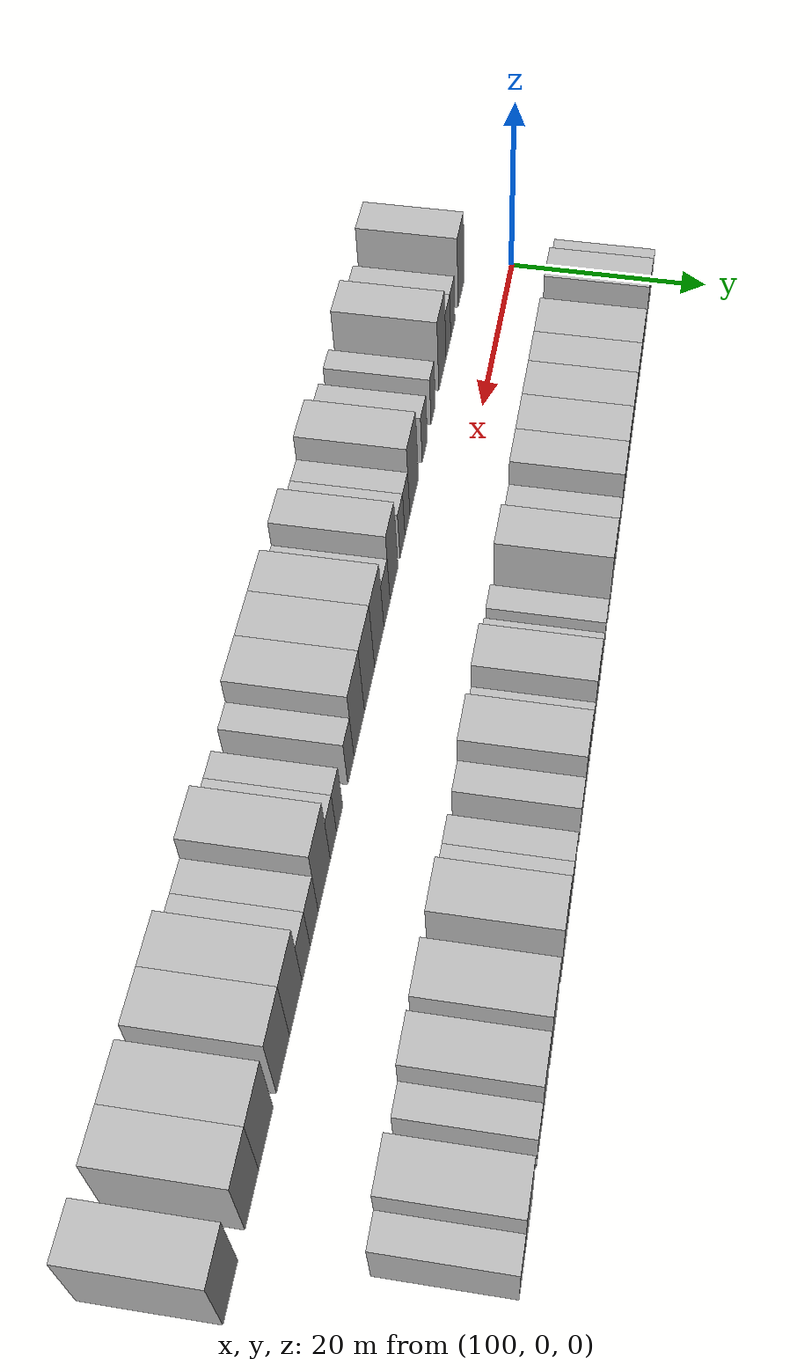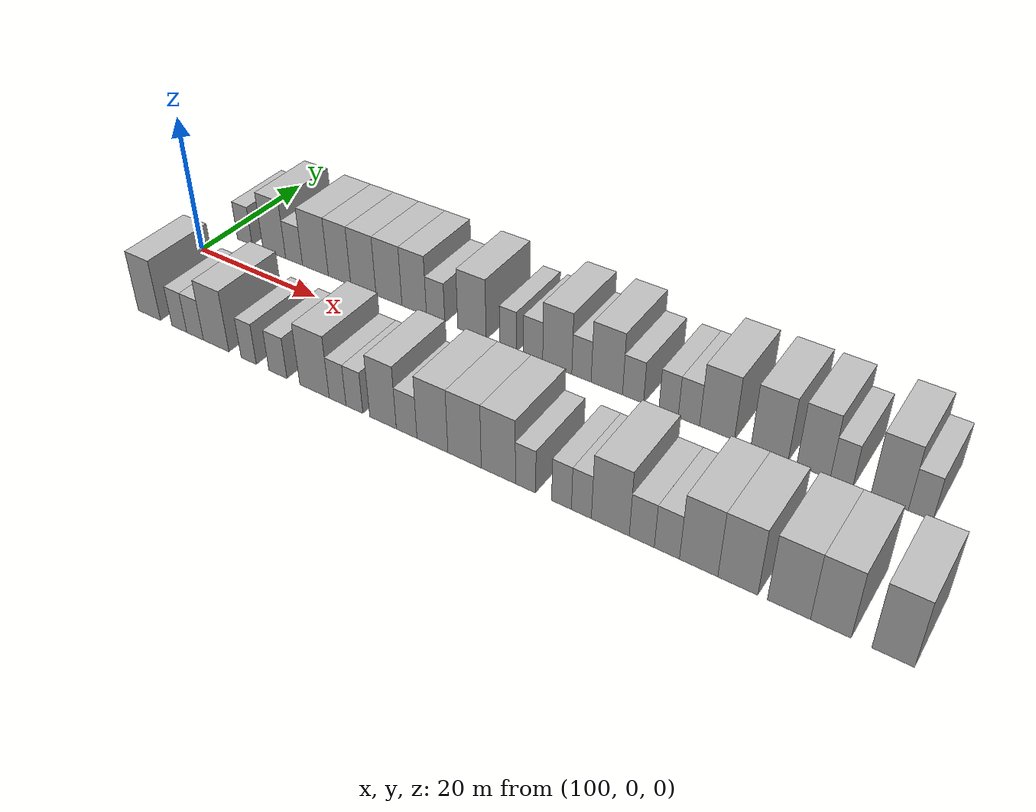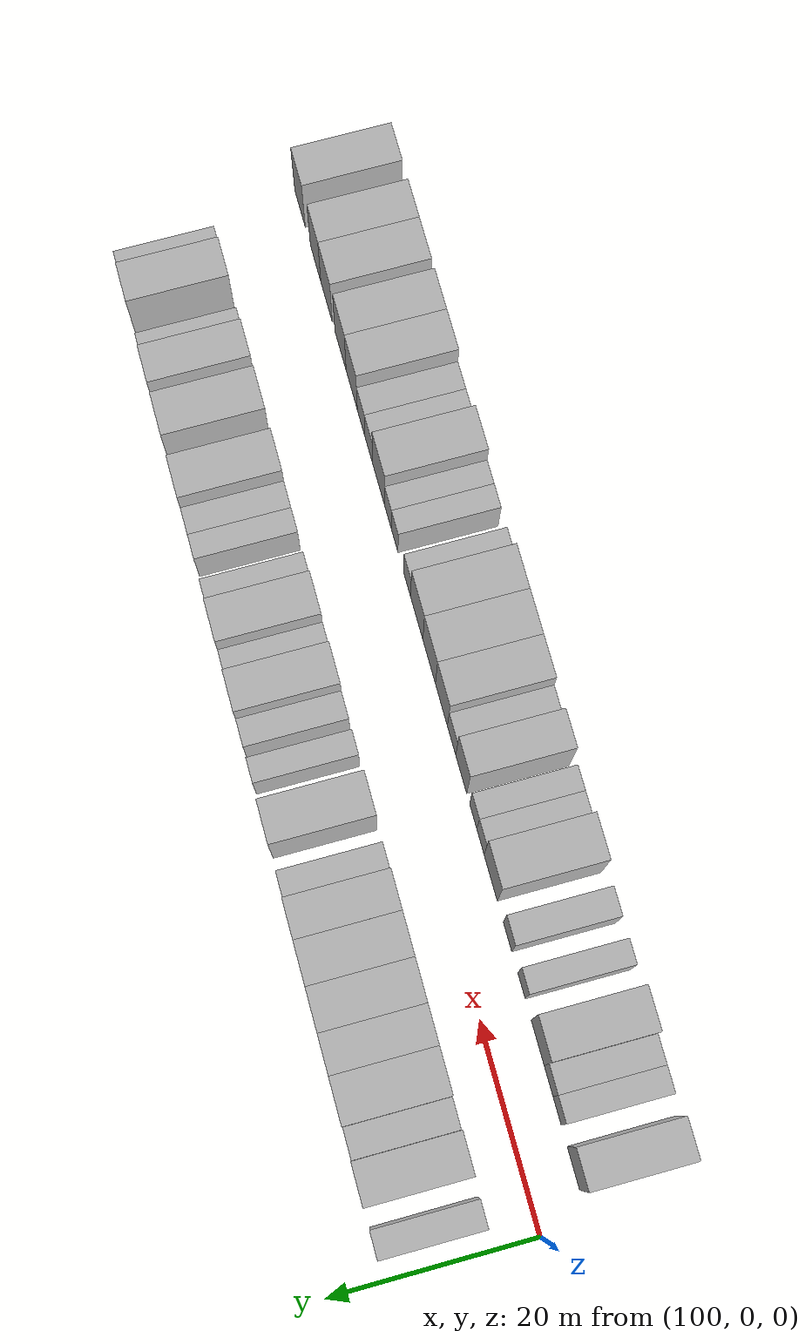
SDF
<sdf version="1.6">
 <world name="default">
  <model name="building_25">
   <static>1</static>
   <pose>103.5814 9.5000 0 0.000000 0.000000 1.570796</pose>
   <link name="link">
    <pose>0 0 3.00 0 0 0</pose>
    <collision name="collision"><geometry><box><size>10.0000 2.6917 6.0000</size></box></geometry></collision>
    <visual name="visual">
     <cast_shadows>0</cast_shadows>
     <geometry><box><size>10.0000 2.6917 6.0000</size></box></geometry>
     <material>
      <script>
       <uri>model://HANNAS_wall/materials/scripts</uri>
       <uri>model://HANNAS_wall/materials/textures</uri>
       <name>vrc/HANNAS_wall</name>
      </script>
     </material>
    </visual>
   </link>
  </model>
  <model name="building_26">
   <static>1</static>
   <pose>108.9583 9.5000 0 0.000000 0.000000 1.570796</pose>
   <link name="link">
    <pose>0 0 4.50 0 0 0</pose>
    <collision name="collision"><geometry><box><size>10.0000 4.0622 9.0000</size></box></geometry></collision>
    <visual name="visual">
     <cast_shadows>0</cast_shadows>
     <geometry><box><size>10.0000 4.0622 9.0000</size></box></geometry>
     <material>
      <script>
       <uri>model://HANNAS_wall/materials/scripts</uri>
       <uri>model://HANNAS_wall/materials/textures</uri>
       <name>vrc/HANNAS_wall</name>
      </script>
     </material>
    </visual>
   </link>
  </model>
  <model name="building_27">
   <static>1</static>
   <pose>112.4739 9.5000 0 0.000000 0.000000 1.570796</pose>
   <link name="link">
    <pose>0 0 3.00 0 0 0</pose>
    <collision name="collision"><geometry><box><size>10.0000 2.9690 6.0000</size></box></geometry></collision>
    <visual name="visual">
     <cast_shadows>0</cast_shadows>
     <geometry><box><size>10.0000 2.9690 6.0000</size></box></geometry>
     <material>
      <script>
       <uri>model://HANNAS_wall/materials/scripts</uri>
       <uri>model://HANNAS_wall/materials/textures</uri>
       <name>vrc/HANNAS_wall</name>
      </script>
     </material>
    </visual>
   </link>
  </model>
  <model name="building_28">
   <static>1</static>
   <pose>116.1923 9.5000 0 0.000000 0.000000 1.570796</pose>
   <link name="link">
    <pose>0 0 4.50 0 0 0</pose>
    <collision name="collision"><geometry><box><size>10.0000 4.4678 9.0000</size></box></geometry></collision>
    <visual name="visual">
     <cast_shadows>0</cast_shadows>
     <geometry><box><size>10.0000 4.4678 9.0000</size></box></geometry>
     <material>
      <script>
       <uri>model://HANNAS_wall/materials/scripts</uri>
       <uri>model://HANNAS_wall/materials/textures</uri>
       <name>vrc/HANNAS_wall</name>
      </script>
     </material>
    </visual>
   </link>
  </model>
  <model name="building_29">
   <static>1</static>
   <pose>120.3228 9.5000 0 0.000000 0.000000 1.570796</pose>
   <link name="link">
    <pose>0 0 4.50 0 0 0</pose>
    <collision name="collision"><geometry><box><size>10.0000 3.7932 9.0000</size></box></geometry></collision>
    <visual name="visual">
     <cast_shadows>0</cast_shadows>
     <geometry><box><size>10.0000 3.7932 9.0000</size></box></geometry>
     <material>
      <script>
       <uri>model://HANNAS_wall/materials/scripts</uri>
       <uri>model://HANNAS_wall/materials/textures</uri>
       <name>vrc/HANNAS_wall</name>
      </script>
     </material>
    </visual>
   </link>
  </model>
  <model name="building_30">
   <static>1</static>
   <pose>124.3046 9.5000 0 0.000000 0.000000 1.570796</pose>
   <link name="link">
    <pose>0 0 4.50 0 0 0</pose>
    <collision name="collision"><geometry><box><size>10.0000 4.1702 9.0000</size></box></geometry></collision>
    <visual name="visual">
     <cast_shadows>0</cast_shadows>
     <geometry><box><size>10.0000 4.1702 9.0000</size></box></geometry>
     <material>
      <script>
       <uri>model://HANNAS_wall/materials/scripts</uri>
       <uri>model://HANNAS_wall/materials/textures</uri>
       <name>vrc/HANNAS_wall</name>
      </script>
     </material>
    </visual>
   </link>
  </model>
  <model name="building_31">
   <static>1</static>
   <pose>128.4947 9.5000 0 0.000000 0.000000 1.570796</pose>
   <link name="link">
    <pose>0 0 4.50 0 0 0</pose>
    <collision name="collision"><geometry><box><size>10.0000 4.2100 9.0000</size></box></geometry></collision>
    <visual name="visual">
     <cast_shadows>0</cast_shadows>
     <geometry><box><size>10.0000 4.2100 9.0000</size></box></geometry>
     <material>
      <script>
       <uri>model://HANNAS_wall/materials/scripts</uri>
       <uri>model://HANNAS_wall/materials/textures</uri>
       <name>vrc/HANNAS_wall</name>
      </script>
     </material>
    </visual>
   </link>
  </model>
  <model name="building_32">
   <static>1</static>
   <pose>132.5430 9.5000 0 0.000000 0.000000 1.570796</pose>
   <link name="link">
    <pose>0 0 4.50 0 0 0</pose>
    <collision name="collision"><geometry><box><size>10.0000 3.8865 9.0000</size></box></geometry></collision>
    <visual name="visual">
     <cast_shadows>0</cast_shadows>
     <geometry><box><size>10.0000 3.8865 9.0000</size></box></geometry>
     <material>
      <script>
       <uri>model://HANNAS_wall/materials/scripts</uri>
       <uri>model://HANNAS_wall/materials/textures</uri>
       <name>vrc/HANNAS_wall</name>
      </script>
     </material>
    </visual>
   </link>
  </model>
  <model name="building_33">
   <static>1</static>
   <pose>135.9067 9.5000 0 0.000000 0.000000 1.570796</pose>
   <link name="link">
    <pose>0 0 3.00 0 0 0</pose>
    <collision name="collision"><geometry><box><size>10.0000 2.8411 6.0000</size></box></geometry></collision>
    <visual name="visual">
     <cast_shadows>0</cast_shadows>
     <geometry><box><size>10.0000 2.8411 6.0000</size></box></geometry>
     <material>
      <script>
       <uri>model://HANNAS_wall/materials/scripts</uri>
       <uri>model://HANNAS_wall/materials/textures</uri>
       <name>vrc/HANNAS_wall</name>
      </script>
     </material>
    </visual>
   </link>
  </model>
  <model name="building_34">
   <static>1</static>
   <pose>141.4555 9.5000 0 0.000000 0.000000 1.570796</pose>
   <link name="link">
    <pose>0 0 4.50 0 0 0</pose>
    <collision name="collision"><geometry><box><size>10.0000 4.2565 9.0000</size></box></geometry></collision>
    <visual name="visual">
     <cast_shadows>0</cast_shadows>
     <geometry><box><size>10.0000 4.2565 9.0000</size></box></geometry>
     <material>
      <script>
       <uri>model://HANNAS_wall/materials/scripts</uri>
       <uri>model://HANNAS_wall/materials/textures</uri>
       <name>vrc/HANNAS_wall</name>
      </script>
     </material>
    </visual>
   </link>
  </model>
  <model name="building_35">
   <static>1</static>
   <pose>146.8189 9.5000 0 0.000000 0.000000 1.570796</pose>
   <link name="link">
    <pose>0 0 3.00 0 0 0</pose>
    <collision name="collision"><geometry><box><size>10.0000 2.4702 6.0000</size></box></geometry></collision>
    <visual name="visual">
     <cast_shadows>0</cast_shadows>
     <geometry><box><size>10.0000 2.4702 6.0000</size></box></geometry>
     <material>
      <script>
       <uri>model://HANNAS_wall/materials/scripts</uri>
       <uri>model://HANNAS_wall/materials/textures</uri>
       <name>vrc/HANNAS_wall</name>
      </script>
     </material>
    </visual>
   </link>
  </model>
  <model name="building_36">
   <static>1</static>
   <pose>150.4202 9.5000 0 0.000000 0.000000 1.570796</pose>
   <link name="link">
    <pose>0 0 3.00 0 0 0</pose>
    <collision name="collision"><geometry><box><size>10.0000 2.7325 6.0000</size></box></geometry></collision>
    <visual name="visual">
     <cast_shadows>0</cast_shadows>
     <geometry><box><size>10.0000 2.7325 6.0000</size></box></geometry>
     <material>
      <script>
       <uri>model://HANNAS_wall/materials/scripts</uri>
       <uri>model://HANNAS_wall/materials/textures</uri>
       <name>vrc/HANNAS_wall</name>
      </script>
     </material>
    </visual>
   </link>
  </model>
  <model name="building_37">
   <static>1</static>
   <pose>153.8271 9.5000 0 0.000000 0.000000 1.570796</pose>
   <link name="link">
    <pose>0 0 4.50 0 0 0</pose>
    <collision name="collision"><geometry><box><size>10.0000 4.0813 9.0000</size></box></geometry></collision>
    <visual name="visual">
     <cast_shadows>0</cast_shadows>
     <geometry><box><size>10.0000 4.0813 9.0000</size></box></geometry>
     <material>
      <script>
       <uri>model://HANNAS_wall/materials/scripts</uri>
       <uri>model://HANNAS_wall/materials/textures</uri>
       <name>vrc/HANNAS_wall</name>
      </script>
     </material>
    </visual>
   </link>
  </model>
  <model name="building_38">
   <static>1</static>
   <pose>157.1939 9.5000 0 0.000000 0.000000 1.570796</pose>
   <link name="link">
    <pose>0 0 3.00 0 0 0</pose>
    <collision name="collision"><geometry><box><size>10.0000 2.6525 6.0000</size></box></geometry></collision>
    <visual name="visual">
     <cast_shadows>0</cast_shadows>
     <geometry><box><size>10.0000 2.6525 6.0000</size></box></geometry>
     <material>
      <script>
       <uri>model://HANNAS_wall/materials/scripts</uri>
       <uri>model://HANNAS_wall/materials/textures</uri>
       <name>vrc/HANNAS_wall</name>
      </script>
     </material>
    </visual>
   </link>
  </model>
  <model name="building_39">
   <static>1</static>
   <pose>160.6369 9.5000 0 0.000000 0.000000 1.570796</pose>
   <link name="link">
    <pose>0 0 4.50 0 0 0</pose>
    <collision name="collision"><geometry><box><size>10.0000 4.2335 9.0000</size></box></geometry></collision>
    <visual name="visual">
     <cast_shadows>0</cast_shadows>
     <geometry><box><size>10.0000 4.2335 9.0000</size></box></geometry>
     <material>
      <script>
       <uri>model://HANNAS_wall/materials/scripts</uri>
       <uri>model://HANNAS_wall/materials/textures</uri>
       <name>vrc/HANNAS_wall</name>
      </script>
     </material>
    </visual>
   </link>
  </model>
  <model name="building_40">
   <static>1</static>
   <pose>164.1347 9.5000 0 0.000000 0.000000 1.570796</pose>
   <link name="link">
    <pose>0 0 3.00 0 0 0</pose>
    <collision name="collision"><geometry><box><size>10.0000 2.7620 6.0000</size></box></geometry></collision>
    <visual name="visual">
     <cast_shadows>0</cast_shadows>
     <geometry><box><size>10.0000 2.7620 6.0000</size></box></geometry>
     <material>
      <script>
       <uri>model://HANNAS_wall/materials/scripts</uri>
       <uri>model://HANNAS_wall/materials/textures</uri>
       <name>vrc/HANNAS_wall</name>
      </script>
     </material>
    </visual>
   </link>
  </model>
  <model name="building_41">
   <static>1</static>
   <pose>168.7528 9.5000 0 0.000000 0.000000 1.570796</pose>
   <link name="link">
    <pose>0 0 3.00 0 0 0</pose>
    <collision name="collision"><geometry><box><size>10.0000 2.4742 6.0000</size></box></geometry></collision>
    <visual name="visual">
     <cast_shadows>0</cast_shadows>
     <geometry><box><size>10.0000 2.4742 6.0000</size></box></geometry>
     <material>
      <script>
       <uri>model://HANNAS_wall/materials/scripts</uri>
       <uri>model://HANNAS_wall/materials/textures</uri>
       <name>vrc/HANNAS_wall</name>
      </script>
     </material>
    </visual>
   </link>
  </model>
  <model name="building_42">
   <static>1</static>
   <pose>171.3411 9.5000 0 0.000000 0.000000 1.570796</pose>
   <link name="link">
    <pose>0 0 3.00 0 0 0</pose>
    <collision name="collision"><geometry><box><size>10.0000 2.7023 6.0000</size></box></geometry></collision>
    <visual name="visual">
     <cast_shadows>0</cast_shadows>
     <geometry><box><size>10.0000 2.7023 6.0000</size></box></geometry>
     <material>
      <script>
       <uri>model://HANNAS_wall/materials/scripts</uri>
       <uri>model://HANNAS_wall/materials/textures</uri>
       <name>vrc/HANNAS_wall</name>
      </script>
     </material>
    </visual>
   </link>
  </model>
  <model name="building_43">
   <static>1</static>
   <pose>174.8384 9.5000 0 0.000000 0.000000 1.570796</pose>
   <link name="link">
    <pose>0 0 4.50 0 0 0</pose>
    <collision name="collision"><geometry><box><size>10.0000 4.2924 9.0000</size></box></geometry></collision>
    <visual name="visual">
     <cast_shadows>0</cast_shadows>
     <geometry><box><size>10.0000 4.2924 9.0000</size></box></geometry>
     <material>
      <script>
       <uri>model://HANNAS_wall/materials/scripts</uri>
       <uri>model://HANNAS_wall/materials/textures</uri>
       <name>vrc/HANNAS_wall</name>
      </script>
     </material>
    </visual>
   </link>
  </model>
  <model name="building_44">
   <static>1</static>
   <pose>181.1859 9.5000 0 0.000000 0.000000 1.570796</pose>
   <link name="link">
    <pose>0 0 4.50 0 0 0</pose>
    <collision name="collision"><geometry><box><size>10.0000 4.4026 9.0000</size></box></geometry></collision>
    <visual name="visual">
     <cast_shadows>0</cast_shadows>
     <geometry><box><size>10.0000 4.4026 9.0000</size></box></geometry>
     <material>
      <script>
       <uri>model://HANNAS_wall/materials/scripts</uri>
       <uri>model://HANNAS_wall/materials/textures</uri>
       <name>vrc/HANNAS_wall</name>
      </script>
     </material>
    </visual>
   </link>
  </model>
  <model name="building_45">
   <static>1</static>
   <pose>186.3127 9.5000 0 0.000000 0.000000 1.570796</pose>
   <link name="link">
    <pose>0 0 4.50 0 0 0</pose>
    <collision name="collision"><geometry><box><size>10.0000 3.8510 9.0000</size></box></geometry></collision>
    <visual name="visual">
     <cast_shadows>0</cast_shadows>
     <geometry><box><size>10.0000 3.8510 9.0000</size></box></geometry>
     <material>
      <script>
       <uri>model://HANNAS_wall/materials/scripts</uri>
       <uri>model://HANNAS_wall/materials/textures</uri>
       <name>vrc/HANNAS_wall</name>
      </script>
     </material>
    </visual>
   </link>
  </model>
  <model name="building_46">
   <static>1</static>
   <pose>189.5015 9.5000 0 0.000000 0.000000 1.570796</pose>
   <link name="link">
    <pose>0 0 3.00 0 0 0</pose>
    <collision name="collision"><geometry><box><size>10.0000 2.5265 6.0000</size></box></geometry></collision>
    <visual name="visual">
     <cast_shadows>0</cast_shadows>
     <geometry><box><size>10.0000 2.5265 6.0000</size></box></geometry>
     <material>
      <script>
       <uri>model://HANNAS_wall/materials/scripts</uri>
       <uri>model://HANNAS_wall/materials/textures</uri>
       <name>vrc/HANNAS_wall</name>
      </script>
     </material>
    </visual>
   </link>
  </model>
  <model name="building_47">
   <static>1</static>
   <pose>194.8007 9.5000 0 0.000000 0.000000 1.570796</pose>
   <link name="link">
    <pose>0 0 4.50 0 0 0</pose>
    <collision name="collision"><geometry><box><size>10.0000 4.0719 9.0000</size></box></geometry></collision>
    <visual name="visual">
     <cast_shadows>0</cast_shadows>
     <geometry><box><size>10.0000 4.0719 9.0000</size></box></geometry>
     <material>
      <script>
       <uri>model://HANNAS_wall/materials/scripts</uri>
       <uri>model://HANNAS_wall/materials/textures</uri>
       <name>vrc/HANNAS_wall</name>
      </script>
     </material>
    </visual>
   </link>
  </model>
  <model name="building_48">
   <static>1</static>
   <pose>198.1495 9.5000 0 0.000000 0.000000 1.570796</pose>
   <link name="link">
    <pose>0 0 3.00 0 0 0</pose>
    <collision name="collision"><geometry><box><size>10.0000 2.6258 6.0000</size></box></geometry></collision>
    <visual name="visual">
     <cast_shadows>0</cast_shadows>
     <geometry><box><size>10.0000 2.6258 6.0000</size></box></geometry>
     <material>
      <script>
       <uri>model://HANNAS_wall/materials/scripts</uri>
       <uri>model://HANNAS_wall/materials/textures</uri>
       <name>vrc/HANNAS_wall</name>
      </script>
     </material>
    </visual>
   </link>
  </model>
  <model name="building_74">
   <static>1</static>
   <pose>105.0556 -9.5000 0 0.000000 0.000000 1.570796</pose>
   <link name="link">
    <pose>0 0 4.50 0 0 0</pose>
    <collision name="collision"><geometry><box><size>10.0000 3.9504 9.0000</size></box></geometry></collision>
    <visual name="visual">
     <cast_shadows>0</cast_shadows>
     <geometry><box><size>10.0000 3.9504 9.0000</size></box></geometry>
     <material>
      <script>
       <uri>model://HANNAS_wall/materials/scripts</uri>
       <uri>model://HANNAS_wall/materials/textures</uri>
       <name>vrc/HANNAS_wall</name>
      </script>
     </material>
    </visual>
   </link>
  </model>
  <model name="building_75">
   <static>1</static>
   <pose>110.3184 -9.5000 0 0.000000 0.000000 1.570796</pose>
   <link name="link">
    <pose>0 0 3.00 0 0 0</pose>
    <collision name="collision"><geometry><box><size>10.0000 2.5753 6.0000</size></box></geometry></collision>
    <visual name="visual">
     <cast_shadows>0</cast_shadows>
     <geometry><box><size>10.0000 2.5753 6.0000</size></box></geometry>
     <material>
      <script>
       <uri>model://HANNAS_wall/materials/scripts</uri>
       <uri>model://HANNAS_wall/materials/textures</uri>
       <name>vrc/HANNAS_wall</name>
      </script>
     </material>
    </visual>
   </link>
  </model>
  <model name="building_76">
   <static>1</static>
   <pose>113.0259 -9.5000 0 0.000000 0.000000 1.570796</pose>
   <link name="link">
    <pose>0 0 3.00 0 0 0</pose>
    <collision name="collision"><geometry><box><size>10.0000 2.8396 6.0000</size></box></geometry></collision>
    <visual name="visual">
     <cast_shadows>0</cast_shadows>
     <geometry><box><size>10.0000 2.8396 6.0000</size></box></geometry>
     <material>
      <script>
       <uri>model://HANNAS_wall/materials/scripts</uri>
       <uri>model://HANNAS_wall/materials/textures</uri>
       <name>vrc/HANNAS_wall</name>
      </script>
     </material>
    </visual>
   </link>
  </model>
  <model name="building_77">
   <static>1</static>
   <pose>116.5698 -9.5000 0 0.000000 0.000000 1.570796</pose>
   <link name="link">
    <pose>0 0 4.50 0 0 0</pose>
    <collision name="collision"><geometry><box><size>10.0000 4.2484 9.0000</size></box></geometry></collision>
    <visual name="visual">
     <cast_shadows>0</cast_shadows>
     <geometry><box><size>10.0000 4.2484 9.0000</size></box></geometry>
     <material>
      <script>
       <uri>model://HANNAS_wall/materials/scripts</uri>
       <uri>model://HANNAS_wall/materials/textures</uri>
       <name>vrc/HANNAS_wall</name>
      </script>
     </material>
    </visual>
   </link>
  </model>
  <model name="building_78">
   <static>1</static>
   <pose>121.9250 -9.5000 0 0.000000 0.000000 1.570796</pose>
   <link name="link">
    <pose>0 0 3.00 0 0 0</pose>
    <collision name="collision"><geometry><box><size>10.0000 2.4620 6.0000</size></box></geometry></collision>
    <visual name="visual">
     <cast_shadows>0</cast_shadows>
     <geometry><box><size>10.0000 2.4620 6.0000</size></box></geometry>
     <material>
      <script>
       <uri>model://HANNAS_wall/materials/scripts</uri>
       <uri>model://HANNAS_wall/materials/textures</uri>
       <name>vrc/HANNAS_wall</name>
      </script>
     </material>
    </visual>
   </link>
  </model>
  <model name="building_79">
   <static>1</static>
   <pose>126.5793 -9.5000 0 0.000000 0.000000 1.570796</pose>
   <link name="link">
    <pose>0 0 3.00 0 0 0</pose>
    <collision name="collision"><geometry><box><size>10.0000 2.8466 6.0000</size></box></geometry></collision>
    <visual name="visual">
     <cast_shadows>0</cast_shadows>
     <geometry><box><size>10.0000 2.8466 6.0000</size></box></geometry>
     <material>
      <script>
       <uri>model://HANNAS_wall/materials/scripts</uri>
       <uri>model://HANNAS_wall/materials/textures</uri>
       <name>vrc/HANNAS_wall</name>
      </script>
     </material>
    </visual>
   </link>
  </model>
  <model name="building_80">
   <static>1</static>
   <pose>132.2432 -9.5000 0 0.000000 0.000000 1.570796</pose>
   <link name="link">
    <pose>0 0 4.50 0 0 0</pose>
    <collision name="collision"><geometry><box><size>10.0000 4.4814 9.0000</size></box></geometry></collision>
    <visual name="visual">
     <cast_shadows>0</cast_shadows>
     <geometry><box><size>10.0000 4.4814 9.0000</size></box></geometry>
     <material>
      <script>
       <uri>model://HANNAS_wall/materials/scripts</uri>
       <uri>model://HANNAS_wall/materials/textures</uri>
       <name>vrc/HANNAS_wall</name>
      </script>
     </material>
    </visual>
   </link>
  </model>
  <model name="building_81">
   <static>1</static>
   <pose>135.7312 -9.5000 0 0.000000 0.000000 1.570796</pose>
   <link name="link">
    <pose>0 0 3.00 0 0 0</pose>
    <collision name="collision"><geometry><box><size>10.0000 2.4945 6.0000</size></box></geometry></collision>
    <visual name="visual">
     <cast_shadows>0</cast_shadows>
     <geometry><box><size>10.0000 2.4945 6.0000</size></box></geometry>
     <material>
      <script>
       <uri>model://HANNAS_wall/materials/scripts</uri>
       <uri>model://HANNAS_wall/materials/textures</uri>
       <name>vrc/HANNAS_wall</name>
      </script>
     </material>
    </visual>
   </link>
  </model>
  <model name="building_82">
   <static>1</static>
   <pose>138.2159 -9.5000 0 0.000000 0.000000 1.570796</pose>
   <link name="link">
    <pose>0 0 3.00 0 0 0</pose>
    <collision name="collision"><geometry><box><size>10.0000 2.4749 6.0000</size></box></geometry></collision>
    <visual name="visual">
     <cast_shadows>0</cast_shadows>
     <geometry><box><size>10.0000 2.4749 6.0000</size></box></geometry>
     <material>
      <script>
       <uri>model://HANNAS_wall/materials/scripts</uri>
       <uri>model://HANNAS_wall/materials/textures</uri>
       <name>vrc/HANNAS_wall</name>
      </script>
     </material>
    </visual>
   </link>
  </model>
  <model name="building_83">
   <static>1</static>
   <pose>142.3547 -9.5000 0 0.000000 0.000000 1.570796</pose>
   <link name="link">
    <pose>0 0 4.50 0 0 0</pose>
    <collision name="collision"><geometry><box><size>10.0000 3.8029 9.0000</size></box></geometry></collision>
    <visual name="visual">
     <cast_shadows>0</cast_shadows>
     <geometry><box><size>10.0000 3.8029 9.0000</size></box></geometry>
     <material>
      <script>
       <uri>model://HANNAS_wall/materials/scripts</uri>
       <uri>model://HANNAS_wall/materials/textures</uri>
       <name>vrc/HANNAS_wall</name>
      </script>
     </material>
    </visual>
   </link>
  </model>
  <model name="building_84">
   <static>1</static>
   <pose>145.7045 -9.5000 0 0.000000 0.000000 1.570796</pose>
   <link name="link">
    <pose>0 0 3.00 0 0 0</pose>
    <collision name="collision"><geometry><box><size>10.0000 2.8966 6.0000</size></box></geometry></collision>
    <visual name="visual">
     <cast_shadows>0</cast_shadows>
     <geometry><box><size>10.0000 2.8966 6.0000</size></box></geometry>
     <material>
      <script>
       <uri>model://HANNAS_wall/materials/scripts</uri>
       <uri>model://HANNAS_wall/materials/textures</uri>
       <name>vrc/HANNAS_wall</name>
      </script>
     </material>
    </visual>
   </link>
  </model>
  <model name="building_85">
   <static>1</static>
   <pose>149.2731 -9.5000 0 0.000000 0.000000 1.570796</pose>
   <link name="link">
    <pose>0 0 4.50 0 0 0</pose>
    <collision name="collision"><geometry><box><size>10.0000 4.2406 9.0000</size></box></geometry></collision>
    <visual name="visual">
     <cast_shadows>0</cast_shadows>
     <geometry><box><size>10.0000 4.2406 9.0000</size></box></geometry>
     <material>
      <script>
       <uri>model://HANNAS_wall/materials/scripts</uri>
       <uri>model://HANNAS_wall/materials/textures</uri>
       <name>vrc/HANNAS_wall</name>
      </script>
     </material>
    </visual>
   </link>
  </model>
  <model name="building_86">
   <static>1</static>
   <pose>153.6163 -9.5000 0 0.000000 0.000000 1.570796</pose>
   <link name="link">
    <pose>0 0 4.50 0 0 0</pose>
    <collision name="collision"><geometry><box><size>10.0000 4.4458 9.0000</size></box></geometry></collision>
    <visual name="visual">
     <cast_shadows>0</cast_shadows>
     <geometry><box><size>10.0000 4.4458 9.0000</size></box></geometry>
     <material>
      <script>
       <uri>model://HANNAS_wall/materials/scripts</uri>
       <uri>model://HANNAS_wall/materials/textures</uri>
       <name>vrc/HANNAS_wall</name>
      </script>
     </material>
    </visual>
   </link>
  </model>
  <model name="building_87">
   <static>1</static>
   <pose>158.0433 -9.5000 0 0.000000 0.000000 1.570796</pose>
   <link name="link">
    <pose>0 0 4.50 0 0 0</pose>
    <collision name="collision"><geometry><box><size>10.0000 4.4081 9.0000</size></box></geometry></collision>
    <visual name="visual">
     <cast_shadows>0</cast_shadows>
     <geometry><box><size>10.0000 4.4081 9.0000</size></box></geometry>
     <material>
      <script>
       <uri>model://HANNAS_wall/materials/scripts</uri>
       <uri>model://HANNAS_wall/materials/textures</uri>
       <name>vrc/HANNAS_wall</name>
      </script>
     </material>
    </visual>
   </link>
  </model>
  <model name="building_88">
   <static>1</static>
   <pose>161.5270 -9.5000 0 0.000000 0.000000 1.570796</pose>
   <link name="link">
    <pose>0 0 3.00 0 0 0</pose>
    <collision name="collision"><geometry><box><size>10.0000 2.5594 6.0000</size></box></geometry></collision>
    <visual name="visual">
     <cast_shadows>0</cast_shadows>
     <geometry><box><size>10.0000 2.5594 6.0000</size></box></geometry>
     <material>
      <script>
       <uri>model://HANNAS_wall/materials/scripts</uri>
       <uri>model://HANNAS_wall/materials/textures</uri>
       <name>vrc/HANNAS_wall</name>
      </script>
     </material>
    </visual>
   </link>
  </model>
  <model name="building_89">
   <static>1</static>
   <pose>166.0201 -9.5000 0 0.000000 0.000000 1.570796</pose>
   <link name="link">
    <pose>0 0 3.00 0 0 0</pose>
    <collision name="collision"><geometry><box><size>10.0000 2.4267 6.0000</size></box></geometry></collision>
    <visual name="visual">
     <cast_shadows>0</cast_shadows>
     <geometry><box><size>10.0000 2.4267 6.0000</size></box></geometry>
     <material>
      <script>
       <uri>model://HANNAS_wall/materials/scripts</uri>
       <uri>model://HANNAS_wall/materials/textures</uri>
       <name>vrc/HANNAS_wall</name>
      </script>
     </material>
    </visual>
   </link>
  </model>
  <model name="building_90">
   <static>1</static>
   <pose>168.4385 -9.5000 0 0.000000 0.000000 1.570796</pose>
   <link name="link">
    <pose>0 0 3.00 0 0 0</pose>
    <collision name="collision"><geometry><box><size>10.0000 2.4102 6.0000</size></box></geometry></collision>
    <visual name="visual">
     <cast_shadows>0</cast_shadows>
     <geometry><box><size>10.0000 2.4102 6.0000</size></box></geometry>
     <material>
      <script>
       <uri>model://HANNAS_wall/materials/scripts</uri>
       <uri>model://HANNAS_wall/materials/textures</uri>
       <name>vrc/HANNAS_wall</name>
      </script>
     </material>
    </visual>
   </link>
  </model>
  <model name="building_91">
   <static>1</static>
   <pose>171.8826 -9.5000 0 0.000000 0.000000 1.570796</pose>
   <link name="link">
    <pose>0 0 4.50 0 0 0</pose>
    <collision name="collision"><geometry><box><size>10.0000 4.4780 9.0000</size></box></geometry></collision>
    <visual name="visual">
     <cast_shadows>0</cast_shadows>
     <geometry><box><size>10.0000 4.4780 9.0000</size></box></geometry>
     <material>
      <script>
       <uri>model://HANNAS_wall/materials/scripts</uri>
       <uri>model://HANNAS_wall/materials/textures</uri>
       <name>vrc/HANNAS_wall</name>
      </script>
     </material>
    </visual>
   </link>
  </model>
  <model name="building_92">
   <static>1</static>
   <pose>175.5637 -9.5000 0 0.000000 0.000000 1.570796</pose>
   <link name="link">
    <pose>0 0 3.00 0 0 0</pose>
    <collision name="collision"><geometry><box><size>10.0000 2.8843 6.0000</size></box></geometry></collision>
    <visual name="visual">
     <cast_shadows>0</cast_shadows>
     <geometry><box><size>10.0000 2.8843 6.0000</size></box></geometry>
     <material>
      <script>
       <uri>model://HANNAS_wall/materials/scripts</uri>
       <uri>model://HANNAS_wall/materials/textures</uri>
       <name>vrc/HANNAS_wall</name>
      </script>
     </material>
    </visual>
   </link>
  </model>
  <model name="building_93">
   <static>1</static>
   <pose>178.4255 -9.5000 0 0.000000 0.000000 1.570796</pose>
   <link name="link">
    <pose>0 0 3.00 0 0 0</pose>
    <collision name="collision"><geometry><box><size>10.0000 2.8391 6.0000</size></box></geometry></collision>
    <visual name="visual">
     <cast_shadows>0</cast_shadows>
     <geometry><box><size>10.0000 2.8391 6.0000</size></box></geometry>
     <material>
      <script>
       <uri>model://HANNAS_wall/materials/scripts</uri>
       <uri>model://HANNAS_wall/materials/textures</uri>
       <name>vrc/HANNAS_wall</name>
      </script>
     </material>
    </visual>
   </link>
  </model>
  <model name="building_94">
   <static>1</static>
   <pose>181.9575 -9.5000 0 0.000000 0.000000 1.570796</pose>
   <link name="link">
    <pose>0 0 4.50 0 0 0</pose>
    <collision name="collision"><geometry><box><size>10.0000 4.2251 9.0000</size></box></geometry></collision>
    <visual name="visual">
     <cast_shadows>0</cast_shadows>
     <geometry><box><size>10.0000 4.2251 9.0000</size></box></geometry>
     <material>
      <script>
       <uri>model://HANNAS_wall/materials/scripts</uri>
       <uri>model://HANNAS_wall/materials/textures</uri>
       <name>vrc/HANNAS_wall</name>
      </script>
     </material>
    </visual>
   </link>
  </model>
  <model name="building_95">
   <static>1</static>
   <pose>186.2089 -9.5000 0 0.000000 0.000000 1.570796</pose>
   <link name="link">
    <pose>0 0 4.50 0 0 0</pose>
    <collision name="collision"><geometry><box><size>10.0000 4.2777 9.0000</size></box></geometry></collision>
    <visual name="visual">
     <cast_shadows>0</cast_shadows>
     <geometry><box><size>10.0000 4.2777 9.0000</size></box></geometry>
     <material>
      <script>
       <uri>model://HANNAS_wall/materials/scripts</uri>
       <uri>model://HANNAS_wall/materials/textures</uri>
       <name>vrc/HANNAS_wall</name>
      </script>
     </material>
    </visual>
   </link>
  </model>
  <model name="building_96">
   <static>1</static>
   <pose>191.5634 -9.5000 0 0.000000 0.000000 1.570796</pose>
   <link name="link">
    <pose>0 0 4.50 0 0 0</pose>
    <collision name="collision"><geometry><box><size>10.0000 4.4312 9.0000</size></box></geometry></collision>
    <visual name="visual">
     <cast_shadows>0</cast_shadows>
     <geometry><box><size>10.0000 4.4312 9.0000</size></box></geometry>
     <material>
      <script>
       <uri>model://HANNAS_wall/materials/scripts</uri>
       <uri>model://HANNAS_wall/materials/textures</uri>
       <name>vrc/HANNAS_wall</name>
      </script>
     </material>
    </visual>
   </link>
  </model>
  <model name="building_97">
   <static>1</static>
   <pose>195.8067 -9.5000 0 0.000000 0.000000 1.570796</pose>
   <link name="link">
    <pose>0 0 4.50 0 0 0</pose>
    <collision name="collision"><geometry><box><size>10.0000 4.0555 9.0000</size></box></geometry></collision>
    <visual name="visual">
     <cast_shadows>0</cast_shadows>
     <geometry><box><size>10.0000 4.0555 9.0000</size></box></geometry>
     <material>
      <script>
       <uri>model://HANNAS_wall/materials/scripts</uri>
       <uri>model://HANNAS_wall/materials/textures</uri>
       <name>vrc/HANNAS_wall</name>
      </script>
     </material>
    </visual>
   </link>
  </model>
  <model name="building_98">
   <static>1</static>
   <pose>201.8796 -9.5000 0 0.000000 0.000000 1.570796</pose>
   <link name="link">
    <pose>0 0 4.50 0 0 0</pose>
    <collision name="collision"><geometry><box><size>10.0000 4.0903 9.0000</size></box></geometry></collision>
    <visual name="visual">
     <cast_shadows>0</cast_shadows>
     <geometry><box><size>10.0000 4.0903 9.0000</size></box></geometry>
     <material>
      <script>
       <uri>model://HANNAS_wall/materials/scripts</uri>
       <uri>model://HANNAS_wall/materials/textures</uri>
       <name>vrc/HANNAS_wall</name>
      </script>
     </material>
    </visual>
   </link>
  </model>
 </world>
</sdf>
